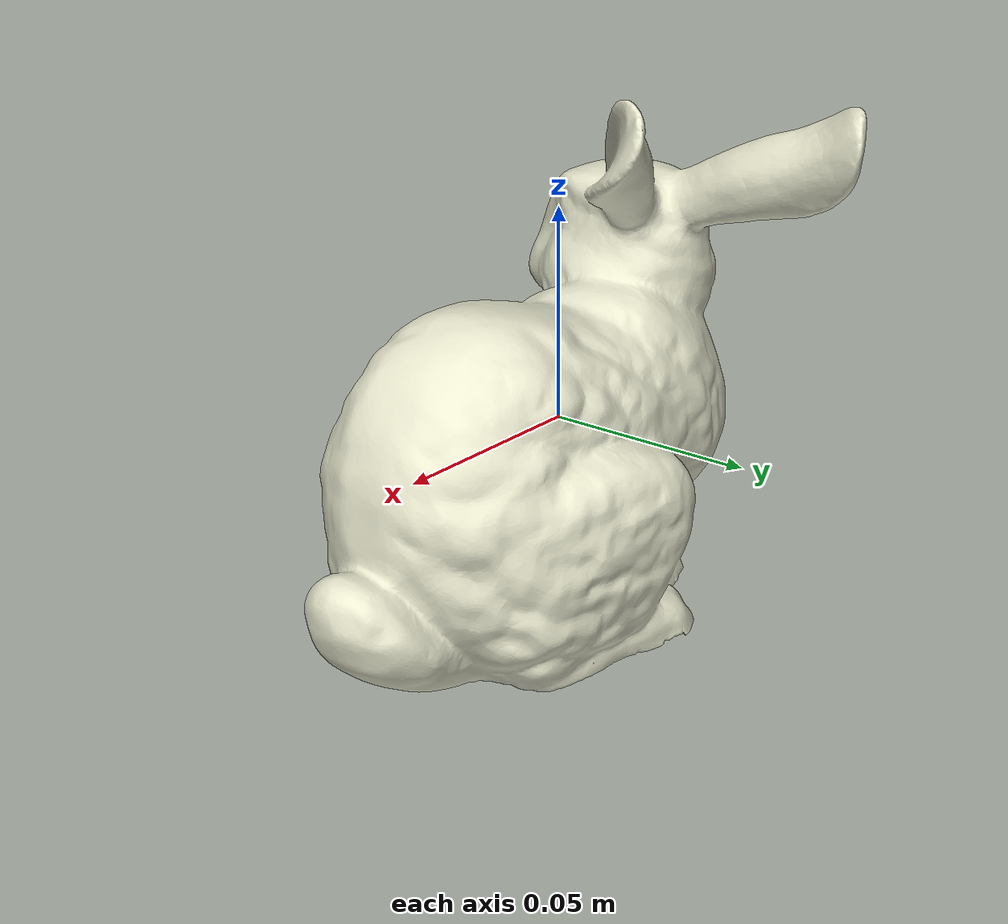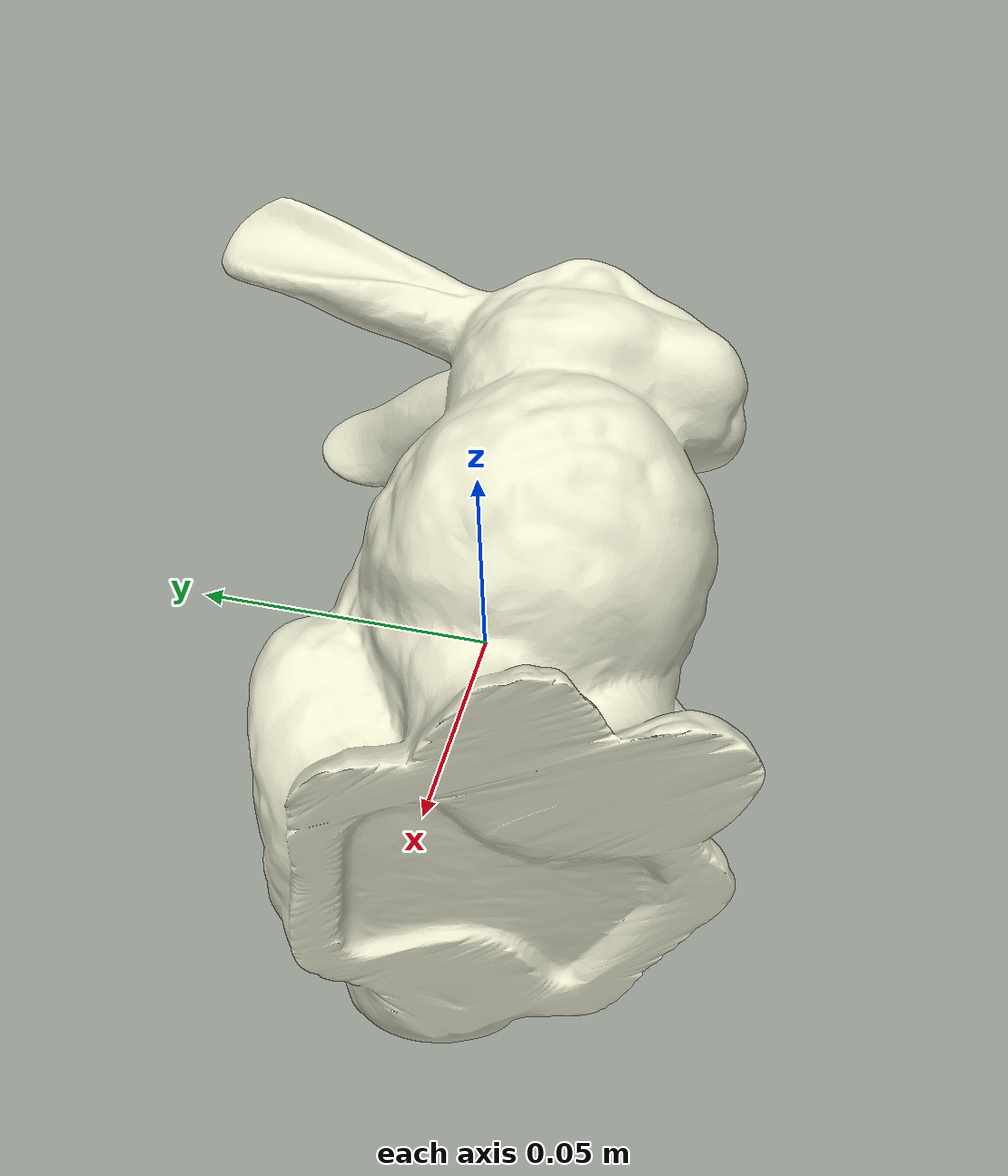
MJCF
<mujoco model="stanford_bunny">
  <compiler meshdir="."/>

  <asset>
    <mesh name="stanford_bunny" file="stanford_bunny.stl"/>
  </asset>

  <worldbody>
    <body name="object">
      <freejoint name="object_joint"/>
      <geom name="object_visual" type="mesh" mesh="stanford_bunny"
            contype="0" conaffinity="0" group="2" rgba="0.9 0.9 0.8 1" mass="0"/>
      <geom name="object_collision" type="mesh" mesh="stanford_bunny"
            mass="0.0495" condim="6" friction="1.0 0.002 0.002" priority="1"/>
    </body>
  </worldbody>
</mujoco>
